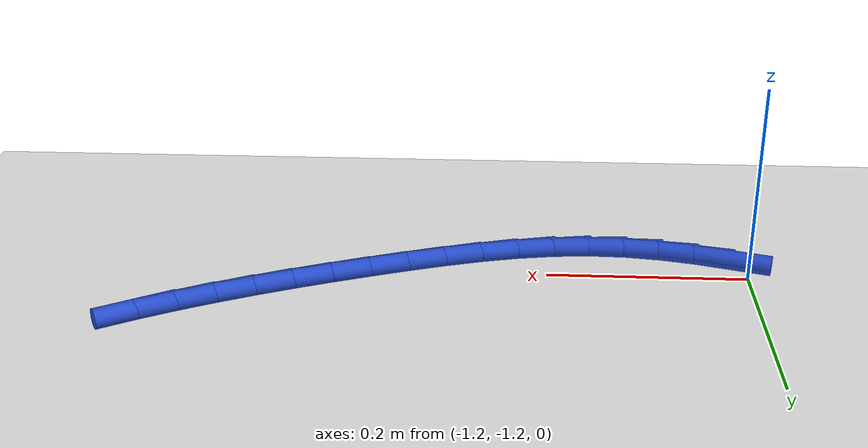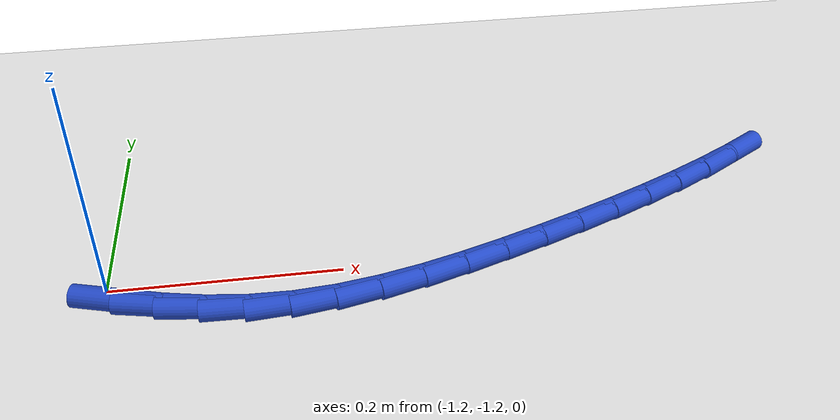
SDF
<sdf version="1.6">
 <world name="default">
  <model name="ground_plane">
   <static>1</static>
   <link name="link">
    <collision name="collision">
     <geometry><plane><normal>0 0 1</normal><size>100 100</size></plane></geometry>
     <surface><friction><ode><mu>100</mu><mu2>50</mu2></ode></friction></surface>
    </collision>
    <visual name="visual">
     <cast_shadows>0</cast_shadows>
     <geometry><plane><normal>0 0 1</normal><size>100 100</size></plane></geometry>
     <material>
      <script><uri>file://media/materials/scripts/gazebo.material</uri><name>Gazebo/WhiteGlow</name></script>
     </material>
    </visual>
   </link>
  </model>
  <model name="line">
   <link name="link_150">
    <pose>-1.1863437241136936 -1.2234910995157957 0.01 0 1.57 -0.291353682196946</pose>
    <collision name="collision">
     <geometry><cylinder><radius>0.01</radius><length>0.08</length></cylinder></geometry>
    </collision>
    <visual name="visual">
     <material>
      <script><name>Gazebo/Blue</name><uri>file://media/materials/scripts/gazebo.material</uri></script>
     </material>
     <geometry><cylinder><radius>0.01</radius><length>0.08</length></cylinder></geometry>
    </visual>
   </link>
   <link name="link_151">
    <pose>-1.1511469391033866 -1.234046179290585 0.01 0 1.57 -0.21391048639073926</pose>
    <collision name="collision">
     <geometry><cylinder><radius>0.01</radius><length>0.08</length></cylinder></geometry>
    </collision>
    <visual name="visual">
     <material>
      <script><name>Gazebo/Blue</name><uri>file://media/materials/scripts/gazebo.material</uri></script>
     </material>
     <geometry><cylinder><radius>0.01</radius><length>0.08</length></cylinder></geometry>
    </visual>
   </link>
   <link name="link_152">
    <pose>-1.1156740917228318 -1.2417520883201894 0.01 0 1.57 -0.12471973412682495</pose>
    <collision name="collision">
     <geometry><cylinder><radius>0.01</radius><length>0.08</length></cylinder></geometry>
    </collision>
    <visual name="visual">
     <material>
      <script><name>Gazebo/Blue</name><uri>file://media/materials/scripts/gazebo.material</uri></script>
     </material>
     <geometry><cylinder><radius>0.01</radius><length>0.08</length></cylinder></geometry>
    </visual>
   </link>
   <link name="link_153">
    <pose>-1.0798772798931253 -1.2462399509262454 0.01 0 1.57 -0.024904261815000408</pose>
    <collision name="collision">
     <geometry><cylinder><radius>0.01</radius><length>0.08</length></cylinder></geometry>
    </collision>
    <visual name="visual">
     <material>
      <script><name>Gazebo/Blue</name><uri>file://media/materials/scripts/gazebo.material</uri></script>
     </material>
     <geometry><cylinder><radius>0.01</radius><length>0.08</length></cylinder></geometry>
    </visual>
   </link>
   <link name="link_154">
    <pose>-1.0437086015353614 -1.2471408914303892 0.01 0 1.57 0.07934625254826277</pose>
    <collision name="collision">
     <geometry><cylinder><radius>0.01</radius><length>0.08</length></cylinder></geometry>
    </collision>
    <visual name="visual">
     <material>
      <script><name>Gazebo/Blue</name><uri>file://media/materials/scripts/gazebo.material</uri></script>
     </material>
     <geometry><cylinder><radius>0.01</radius><length>0.08</length></cylinder></geometry>
    </visual>
   </link>
   <link name="link_155">
    <pose>-1.0071463530986342 -1.2442337104329466 0.01 0 1.57 0.16892149653722213</pose>
    <collision name="collision">
     <geometry><cylinder><radius>0.01</radius><length>0.08</length></cylinder></geometry>
    </collision>
    <visual name="visual">
     <material>
      <script><name>Gazebo/Blue</name><uri>file://media/materials/scripts/gazebo.material</uri></script>
     </material>
     <geometry><cylinder><radius>0.01</radius><length>0.08</length></cylinder></geometry>
    </visual>
   </link>
   <link name="link_156">
    <pose>-0.970284102686886 -1.2379469736289639 0.01 0 1.57 0.23988545190608296</pose>
    <collision name="collision">
     <geometry><cylinder><radius>0.01</radius><length>0.08</length></cylinder></geometry>
    </collision>
    <visual name="visual">
     <material>
      <script><name>Gazebo/Blue</name><uri>file://media/materials/scripts/gazebo.material</uri></script>
     </material>
     <geometry><cylinder><radius>0.01</radius><length>0.08</length></cylinder></geometry>
    </visual>
   </link>
   <link name="link_157">
    <pose>-0.9332471124024911 -1.2288878999471904 0.01 0 1.57 0.293885398965232</pose>
    <collision name="collision">
     <geometry><cylinder><radius>0.01</radius><length>0.08</length></cylinder></geometry>
    </collision>
    <visual name="visual">
     <material>
      <script><name>Gazebo/Blue</name><uri>file://media/materials/scripts/gazebo.material</uri></script>
     </material>
     <geometry><cylinder><radius>0.01</radius><length>0.08</length></cylinder></geometry>
    </visual>
   </link>
   <link name="link_158">
    <pose>-0.8961606452712025 -1.2176637135212958 0.01 0 1.57 0.33253682324000555</pose>
    <collision name="collision">
     <geometry><cylinder><radius>0.01</radius><length>0.08</length></cylinder></geometry>
    </collision>
    <visual name="visual">
     <material>
      <script><name>Gazebo/Blue</name><uri>file://media/materials/scripts/gazebo.material</uri></script>
     </material>
     <geometry><cylinder><radius>0.01</radius><length>0.08</length></cylinder></geometry>
    </visual>
   </link>
   <link name="link_159">
    <pose>-0.8591499643187737 -1.2048816384849497 0.01 0 1.57 0.3571278647524879</pose>
    <collision name="collision">
     <geometry><cylinder><radius>0.01</radius><length>0.08</length></cylinder></geometry>
    </collision>
    <visual name="visual">
     <material>
      <script><name>Gazebo/Blue</name><uri>file://media/materials/scripts/gazebo.material</uri></script>
     </material>
     <geometry><cylinder><radius>0.01</radius><length>0.08</length></cylinder></geometry>
    </visual>
   </link>
   <link name="link_160">
    <pose>-0.8223402811014375 -1.1911469397807266 0.01 0 1.57 0.37369288629076025</pose>
    <collision name="collision">
     <geometry><cylinder><radius>0.01</radius><length>0.08</length></cylinder></geometry>
    </collision>
    <visual name="visual">
     <material>
      <script><name>Gazebo/Blue</name><uri>file://media/materials/scripts/gazebo.material</uri></script>
     </material>
     <geometry><cylinder><radius>0.01</radius><length>0.08</length></cylinder></geometry>
    </visual>
   </link>
   <link name="link_161">
    <pose>-0.785850867666491 -1.1768387945076757 0.01 0 1.57 0.3926675502712043</pose>
    <collision name="collision">
     <geometry><cylinder><radius>0.01</radius><length>0.08</length></cylinder></geometry>
    </collision>
    <visual name="visual">
     <material>
      <script><name>Gazebo/Blue</name><uri>file://media/materials/scripts/gazebo.material</uri></script>
     </material>
     <geometry><cylinder><radius>0.01</radius><length>0.08</length></cylinder></geometry>
    </visual>
   </link>
   <link name="link_162">
    <pose>-0.7497896125532534 -1.161903065698173 0.01 0 1.57 0.4153267490340544</pose>
    <collision name="collision">
     <geometry><cylinder><radius>0.01</radius><length>0.08</length></cylinder></geometry>
    </collision>
    <visual name="visual">
     <material>
      <script><name>Gazebo/Blue</name><uri>file://media/materials/scripts/gazebo.material</uri></script>
     </material>
     <geometry><cylinder><radius>0.01</radius><length>0.08</length></cylinder></geometry>
    </visual>
   </link>
   <link name="link_163">
    <pose>-0.7142631173620032 -1.1462366289556245 0.01 0 1.57 0.44180590144936477</pose>
    <collision name="collision">
     <geometry><cylinder><radius>0.01</radius><length>0.08</length></cylinder></geometry>
    </collision>
    <visual name="visual">
     <material>
      <script><name>Gazebo/Blue</name><uri>file://media/materials/scripts/gazebo.material</uri></script>
     </material>
     <geometry><cylinder><radius>0.01</radius><length>0.08</length></cylinder></geometry>
    </visual>
   </link>
   <link name="link_164">
    <pose>-0.6793779836930204 -1.1297363598834367 0.01 0 1.57 0.4722492819552156</pose>
    <collision name="collision">
     <geometry><cylinder><radius>0.01</radius><length>0.08</length></cylinder></geometry>
    </collision>
    <visual name="visual">
     <material>
      <script><name>Gazebo/Blue</name><uri>file://media/materials/scripts/gazebo.material</uri></script>
     </material>
     <geometry><cylinder><radius>0.01</radius><length>0.08</length></cylinder></geometry>
    </visual>
   </link>
   <link name="link_165">
    <pose>-0.645240813146584 -1.1122991340850152 0.01 0 1.57 0.5067993008937536</pose>
    <collision name="collision">
     <geometry><cylinder><radius>0.01</radius><length>0.08</length></cylinder></geometry>
    </collision>
    <visual name="visual">
     <material>
      <script><name>Gazebo/Blue</name><uri>file://media/materials/scripts/gazebo.material</uri></script>
     </material>
     <geometry><cylinder><radius>0.01</radius><length>0.08</length></cylinder></geometry>
    </visual>
   </link>
   <link name="link_166">
    <pose>-0.6119582073229737 -1.0938218271637667 0.01 0 1.57 0.5455822894055472</pose>
    <collision name="collision">
     <geometry><cylinder><radius>0.01</radius><length>0.08</length></cylinder></geometry>
    </collision>
    <visual name="visual">
     <material>
      <script><name>Gazebo/Blue</name><uri>file://media/materials/scripts/gazebo.material</uri></script>
     </material>
     <geometry><cylinder><radius>0.01</radius><length>0.08</length></cylinder></geometry>
    </visual>
   </link>
  </model>
 </world>
</sdf>
